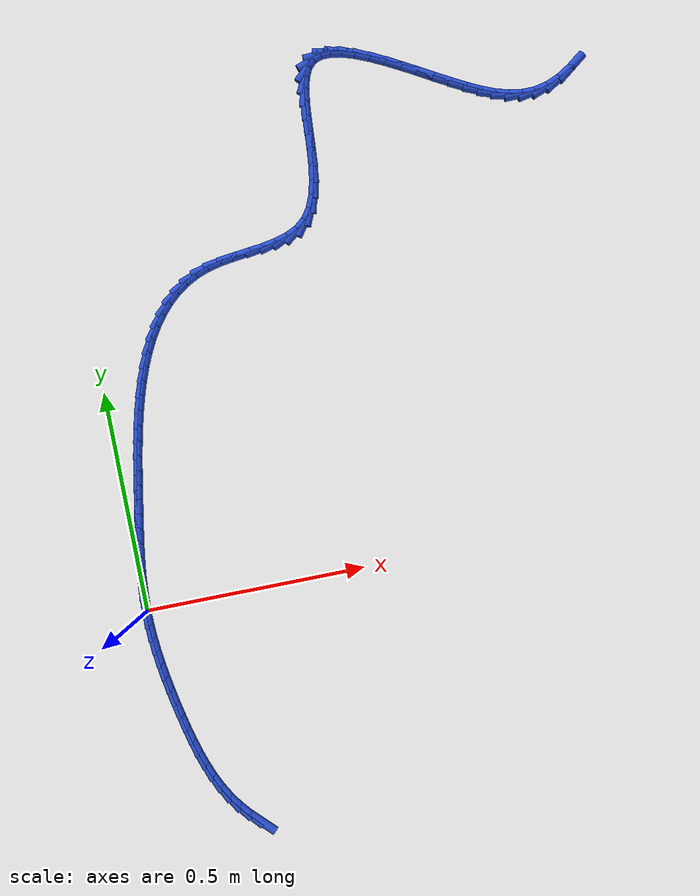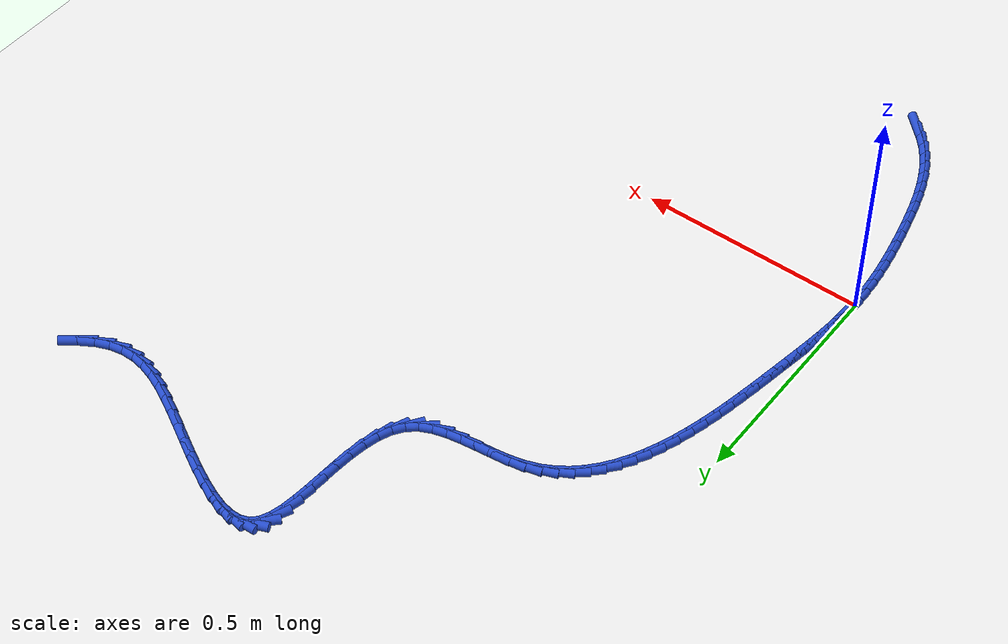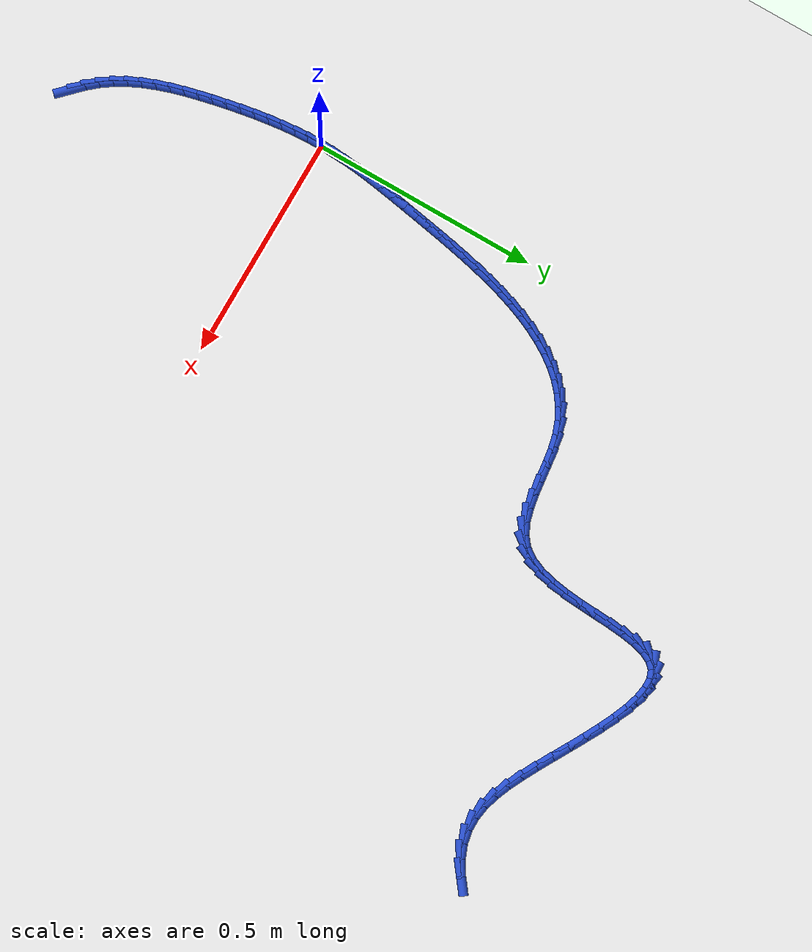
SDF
<sdf version="1.6">
 <world name="default">
  <model name="ground_plane">
   <static>1</static>
   <link name="link">
    <collision name="collision">
     <geometry><plane><normal>0 0 1</normal><size>100 100</size></plane></geometry>
     <surface><friction><ode><mu>100</mu><mu2>50</mu2></ode></friction></surface>
    </collision>
    <visual name="visual">
     <cast_shadows>0</cast_shadows>
     <geometry><plane><normal>0 0 1</normal><size>100 100</size></plane></geometry>
     <material>
      <script><uri>file://media/materials/scripts/gazebo.material</uri><name>Gazebo/WhiteGlow</name></script>
     </material>
    </visual>
   </link>
  </model>
  <model name="line">
   <link name="link_0">
    <pose>-2.3418766925686896e-17 2.7755575615628914e-17 0.01 0 1.57 1.5431840335242455</pose>
    <collision name="collision">
     <geometry><cylinder><radius>0.01</radius><length>0.08</length></cylinder></geometry>
    </collision>
    <visual name="visual">
     <material>
      <script><name>Gazebo/Blue</name><uri>file://media/materials/scripts/gazebo.material</uri></script>
     </material>
     <geometry><cylinder><radius>0.01</radius><length>0.08</length></cylinder></geometry>
    </visual>
   </link>
   <link name="link_1">
    <pose>0.0008205790836752634 0.029710336549701805 0.01 0 1.57 1.50552651921383</pose>
    <collision name="collision">
     <geometry><cylinder><radius>0.01</radius><length>0.08</length></cylinder></geometry>
    </collision>
    <visual name="visual">
     <material>
      <script><name>Gazebo/Blue</name><uri>file://media/materials/scripts/gazebo.material</uri></script>
     </material>
     <geometry><cylinder><radius>0.01</radius><length>0.08</length></cylinder></geometry>
    </visual>
   </link>
   <link name="link_2">
    <pose>0.0027581841918830462 0.05935425467118082 0.01 0 1.57 1.473147145253619</pose>
    <collision name="collision">
     <geometry><cylinder><radius>0.01</radius><length>0.08</length></cylinder></geometry>
    </collision>
    <visual name="visual">
     <material>
      <script><name>Gazebo/Blue</name><uri>file://media/materials/scripts/gazebo.material</uri></script>
     </material>
     <geometry><cylinder><radius>0.01</radius><length>0.08</length></cylinder></geometry>
    </visual>
   </link>
   <link name="link_3">
    <pose>0.005669025520075664 0.08906862011442201 0.01 0 1.57 1.4464387678759532</pose>
    <collision name="collision">
     <geometry><cylinder><radius>0.01</radius><length>0.08</length></cylinder></geometry>
    </collision>
    <visual name="visual">
     <material>
      <script><name>Gazebo/Blue</name><uri>file://media/materials/scripts/gazebo.material</uri></script>
     </material>
     <geometry><cylinder><radius>0.01</radius><length>0.08</length></cylinder></geometry>
    </visual>
   </link>
   <link name="link_4">
    <pose>0.00940931326370546 0.11899029862941032 0.01 0 1.57 1.4255900085189623</pose>
    <collision name="collision">
     <geometry><cylinder><radius>0.01</radius><length>0.08</length></cylinder></geometry>
    </collision>
    <visual name="visual">
     <material>
      <script><name>Gazebo/Blue</name><uri>file://media/materials/scripts/gazebo.material</uri></script>
     </material>
     <geometry><cylinder><radius>0.01</radius><length>0.08</length></cylinder></geometry>
    </visual>
   </link>
   <link name="link_5">
    <pose>0.013835257618224761 0.14925615596613062 0.01 0 1.57 1.4106095447927667</pose>
    <collision name="collision">
     <geometry><cylinder><radius>0.01</radius><length>0.08</length></cylinder></geometry>
    </collision>
    <visual name="visual">
     <material>
      <script><name>Gazebo/Blue</name><uri>file://media/materials/scripts/gazebo.material</uri></script>
     </material>
     <geometry><cylinder><radius>0.01</radius><length>0.08</length></cylinder></geometry>
    </visual>
   </link>
   <link name="link_6">
    <pose>0.018803068779085916 0.18000305787456794 0.01 0 1.57 1.4013568138451076</pose>
    <collision name="collision">
     <geometry><cylinder><radius>0.01</radius><length>0.08</length></cylinder></geometry>
    </collision>
    <visual name="visual">
     <material>
      <script><name>Gazebo/Blue</name><uri>file://media/materials/scripts/gazebo.material</uri></script>
     </material>
     <geometry><cylinder><radius>0.01</radius><length>0.08</length></cylinder></geometry>
    </visual>
   </link>
   <link name="link_7">
    <pose>0.02416895694174127 0.21136787010470726 0.01 0 1.57 1.397569741843321</pose>
    <collision name="collision">
     <geometry><cylinder><radius>0.01</radius><length>0.08</length></cylinder></geometry>
    </collision>
    <visual name="visual">
     <material>
      <script><name>Gazebo/Blue</name><uri>file://media/materials/scripts/gazebo.material</uri></script>
     </material>
     <geometry><cylinder><radius>0.01</radius><length>0.08</length></cylinder></geometry>
    </visual>
   </link>
   <link name="link_8">
    <pose>0.029789229954243227 0.24348732534745177 0.01 0 1.57 1.396500510977313</pose>
    <collision name="collision">
     <geometry><cylinder><radius>0.01</radius><length>0.08</length></cylinder></geometry>
    </collision>
    <visual name="visual">
     <material>
      <script><name>Gazebo/Blue</name><uri>file://media/materials/scripts/gazebo.material</uri></script>
     </material>
     <geometry><cylinder><radius>0.01</radius><length>0.08</length></cylinder></geometry>
    </visual>
   </link>
   <link name="link_9">
    <pose>0.03558605786783621 0.27640841404143074 0.01 0 1.57 1.3915085409926655</pose>
    <collision name="collision">
     <geometry><cylinder><radius>0.01</radius><length>0.08</length></cylinder></geometry>
    </collision>
    <visual name="visual">
     <material>
      <script><name>Gazebo/Blue</name><uri>file://media/materials/scripts/gazebo.material</uri></script>
     </material>
     <geometry><cylinder><radius>0.01</radius><length>0.08</length></cylinder></geometry>
    </visual>
   </link>
   <link name="link_10">
    <pose>0.04166178018431136 0.309932632069983 0.01 0 1.57 1.3816417532952412</pose>
    <collision name="collision">
     <geometry><cylinder><radius>0.01</radius><length>0.08</length></cylinder></geometry>
    </collision>
    <visual name="visual">
     <material>
      <script><name>Gazebo/Blue</name><uri>file://media/materials/scripts/gazebo.material</uri></script>
     </material>
     <geometry><cylinder><radius>0.01</radius><length>0.08</length></cylinder></geometry>
    </visual>
   </link>
   <link name="link_11">
    <pose>0.048149265617327096 0.3438198769474235 0.01 0 1.57 1.3669043718705038</pose>
    <collision name="collision">
     <geometry><cylinder><radius>0.01</radius><length>0.08</length></cylinder></geometry>
    </collision>
    <visual name="visual">
     <material>
      <script><name>Gazebo/Blue</name><uri>file://media/materials/scripts/gazebo.material</uri></script>
     </material>
     <geometry><cylinder><radius>0.01</radius><length>0.08</length></cylinder></geometry>
    </visual>
   </link>
   <link name="link_12">
    <pose>0.055181382880541786 0.37783004618806704 0.01 0 1.57 1.347132735977017</pose>
    <collision name="collision">
     <geometry><cylinder><radius>0.01</radius><length>0.08</length></cylinder></geometry>
    </collision>
    <visual name="visual">
     <material>
      <script><name>Gazebo/Blue</name><uri>file://media/materials/scripts/gazebo.material</uri></script>
     </material>
     <geometry><cylinder><radius>0.01</radius><length>0.08</length></cylinder></geometry>
    </visual>
   </link>
   <link name="link_13">
    <pose>0.06289100068761386 0.41172303730622845 0.01 0 1.57 1.3220028289862888</pose>
    <collision name="collision">
     <geometry><cylinder><radius>0.01</radius><length>0.08</length></cylinder></geometry>
    </collision>
    <visual name="visual">
     <material>
      <script><name>Gazebo/Blue</name><uri>file://media/materials/scripts/gazebo.material</uri></script>
     </material>
     <geometry><cylinder><radius>0.01</radius><length>0.08</length></cylinder></geometry>
    </visual>
   </link>
   <link name="link_14">
    <pose>0.07141098775220173 0.4452587478162229 0.01 0 1.57 1.2910300230309852</pose>
    <collision name="collision">
     <geometry><cylinder><radius>0.01</radius><length>0.08</length></cylinder></geometry>
    </collision>
    <visual name="visual">
     <material>
      <script><name>Gazebo/Blue</name><uri>file://media/materials/scripts/gazebo.material</uri></script>
     </material>
     <geometry><cylinder><radius>0.01</radius><length>0.08</length></cylinder></geometry>
    </visual>
   </link>
   <link name="link_15">
    <pose>0.08087421278796372 0.47819707523236465 0.01 0 1.57 1.253565006715181</pose>
    <collision name="collision">
     <geometry><cylinder><radius>0.01</radius><length>0.08</length></cylinder></geometry>
    </collision>
    <visual name="visual">
     <material>
      <script><name>Gazebo/Blue</name><uri>file://media/materials/scripts/gazebo.material</uri></script>
     </material>
     <geometry><cylinder><radius>0.01</radius><length>0.08</length></cylinder></geometry>
    </visual>
   </link>
   <link name="link_16">
    <pose>0.09141354450855828 0.5102979170689689 0.01 0 1.57 1.208791385753163</pose>
    <collision name="collision">
     <geometry><cylinder><radius>0.01</radius><length>0.08</length></cylinder></geometry>
    </collision>
    <visual name="visual">
     <material>
      <script><name>Gazebo/Blue</name><uri>file://media/materials/scripts/gazebo.material</uri></script>
     </material>
     <geometry><cylinder><radius>0.01</radius><length>0.08</length></cylinder></geometry>
    </visual>
   </link>
   <link name="link_17">
    <pose>0.10316185162764382 0.5413211708403504 0.01 0 1.57 1.1557338823651864</pose>
    <collision name="collision">
     <geometry><cylinder><radius>0.01</radius><length>0.08</length></cylinder></geometry>
    </collision>
    <visual name="visual">
     <material>
      <script><name>Gazebo/Blue</name><uri>file://media/materials/scripts/gazebo.material</uri></script>
     </material>
     <geometry><cylinder><radius>0.01</radius><length>0.08</length></cylinder></geometry>
    </visual>
   </link>
   <link name="link_18">
    <pose>0.1162520028588787 0.5710267340608242 0.01 0 1.57 1.0932919653676183</pose>
    <collision name="collision">
     <geometry><cylinder><radius>0.01</radius><length>0.08</length></cylinder></geometry>
    </collision>
    <visual name="visual">
     <material>
      <script><name>Gazebo/Blue</name><uri>file://media/materials/scripts/gazebo.material</uri></script>
     </material>
     <geometry><cylinder><radius>0.01</radius><length>0.08</length></cylinder></geometry>
    </visual>
   </link>
   <link name="link_19">
    <pose>0.13081686691592137 0.599174504244705 0.01 0 1.57 1.020322042075308</pose>
    <collision name="collision">
     <geometry><cylinder><radius>0.01</radius><length>0.08</length></cylinder></geometry>
    </collision>
    <visual name="visual">
     <material>
      <script><name>Gazebo/Blue</name><uri>file://media/materials/scripts/gazebo.material</uri></script>
     </material>
     <geometry><cylinder><radius>0.01</radius><length>0.08</length></cylinder></geometry>
    </visual>
   </link>
   <link name="link_20">
    <pose>0.14698931251243016 0.6255243789063073 0.01 0 1.57 0.9357994101545254</pose>
    <collision name="collision">
     <geometry><cylinder><radius>0.01</radius><length>0.08</length></cylinder></geometry>
    </collision>
    <visual name="visual">
     <material>
      <script><name>Gazebo/Blue</name><uri>file://media/materials/scripts/gazebo.material</uri></script>
     </material>
     <geometry><cylinder><radius>0.01</radius><length>0.08</length></cylinder></geometry>
    </visual>
   </link>
   <link name="link_21">
    <pose>0.16490220836206354 0.6498362555599466 0.01 0 1.57 0.8390902157389397</pose>
    <collision name="collision">
     <geometry><cylinder><radius>0.01</radius><length>0.08</length></cylinder></geometry>
    </collision>
    <visual name="visual">
     <material>
      <script><name>Gazebo/Blue</name><uri>file://media/materials/scripts/gazebo.material</uri></script>
     </material>
     <geometry><cylinder><radius>0.01</radius><length>0.08</length></cylinder></geometry>
    </visual>
   </link>
   <link name="link_22">
    <pose>0.1846884231784799 0.6718700317199374 0.01 0 1.57 0.7303354842152526</pose>
    <collision name="collision">
     <geometry><cylinder><radius>0.01</radius><length>0.08</length></cylinder></geometry>
    </collision>
    <visual name="visual">
     <material>
      <script><name>Gazebo/Blue</name><uri>file://media/materials/scripts/gazebo.material</uri></script>
     </material>
     <geometry><cylinder><radius>0.01</radius><length>0.08</length></cylinder></geometry>
    </visual>
   </link>
   <link name="link_23">
    <pose>0.20648082567533757 0.6913856049005946 0.01 0 1.57 0.610873083414487</pose>
    <collision name="collision">
     <geometry><cylinder><radius>0.01</radius><length>0.08</length></cylinder></geometry>
    </collision>
    <visual name="visual">
     <material>
      <script><name>Gazebo/Blue</name><uri>file://media/materials/scripts/gazebo.material</uri></script>
     </material>
     <geometry><cylinder><radius>0.01</radius><length>0.08</length></cylinder></geometry>
    </visual>
   </link>
   <link name="link_24">
    <pose>0.23041228456629503 0.7081428726162331 0.01 0 1.57 0.4835093218167435</pose>
    <collision name="collision">
     <geometry><cylinder><radius>0.01</radius><length>0.08</length></cylinder></geometry>
    </collision>
    <visual name="visual">
     <material>
      <script><name>Gazebo/Blue</name><uri>file://media/materials/scripts/gazebo.material</uri></script>
     </material>
     <geometry><cylinder><radius>0.01</radius><length>0.08</length></cylinder></geometry>
    </visual>
   </link>
   <link name="link_25">
    <pose>0.25661566856501056 0.7219017323811675 0.01 0 1.57 0.35238991997093994</pose>
    <collision name="collision">
     <geometry><cylinder><radius>0.01</radius><length>0.08</length></cylinder></geometry>
    </collision>
    <visual name="visual">
     <material>
      <script><name>Gazebo/Blue</name><uri>file://media/materials/scripts/gazebo.material</uri></script>
     </material>
     <geometry><cylinder><radius>0.01</radius><length>0.08</length></cylinder></geometry>
    </visual>
   </link>
   <link name="link_26">
    <pose>0.28522384638514275 0.7324220817097131 0.01 0 1.57 0.2298701826235086</pose>
    <collision name="collision">
     <geometry><cylinder><radius>0.01</radius><length>0.08</length></cylinder></geometry>
    </collision>
    <visual name="visual">
     <material>
      <script><name>Gazebo/Blue</name><uri>file://media/materials/scripts/gazebo.material</uri></script>
     </material>
     <geometry><cylinder><radius>0.01</radius><length>0.08</length></cylinder></geometry>
    </visual>
   </link>
   <link name="link_27">
    <pose>0.3162094445750726 0.7396729109899698 0.01 0 1.57 0.1501688839219765</pose>
    <collision name="collision">
     <geometry><cylinder><radius>0.01</radius><length>0.08</length></cylinder></geometry>
    </collision>
    <visual name="visual">
     <material>
      <script><name>Gazebo/Blue</name><uri>file://media/materials/scripts/gazebo.material</uri></script>
     </material>
     <geometry><cylinder><radius>0.01</radius><length>0.08</length></cylinder></geometry>
    </visual>
   </link>
   <link name="link_28">
    <pose>0.3487940414781982 0.7446032200055676 0.01 0 1.57 0.11536979349667276</pose>
    <collision name="collision">
     <geometry><cylinder><radius>0.01</radius><length>0.08</length></cylinder></geometry>
    </collision>
    <visual name="visual">
     <material>
      <script><name>Gazebo/Blue</name><uri>file://media/materials/scripts/gazebo.material</uri></script>
     </material>
     <geometry><cylinder><radius>0.01</radius><length>0.08</length></cylinder></geometry>
    </visual>
   </link>
   <link name="link_29">
    <pose>0.3819793652471812 0.7484488812749355 0.01 0 1.57 0.12130439466043336</pose>
    <collision name="collision">
     <geometry><cylinder><radius>0.01</radius><length>0.08</length></cylinder></geometry>
    </collision>
    <visual name="visual">
     <material>
      <script><name>Gazebo/Blue</name><uri>file://media/materials/scripts/gazebo.material</uri></script>
     </material>
     <geometry><cylinder><radius>0.01</radius><length>0.08</length></cylinder></geometry>
    </visual>
   </link>
   <link name="link_30">
    <pose>0.4147671163705326 0.752445803414223 0.01 0 1.57 0.16985955729170202</pose>
    <collision name="collision">
     <geometry><cylinder><radius>0.01</radius><length>0.08</length></cylinder></geometry>
    </collision>
    <visual name="visual">
     <material>
      <script><name>Gazebo/Blue</name><uri>file://media/materials/scripts/gazebo.material</uri></script>
     </material>
     <geometry><cylinder><radius>0.01</radius><length>0.08</length></cylinder></geometry>
    </visual>
   </link>
   <link name="link_31">
    <pose>0.44615899533676384 0.7578298950395792 0.01 0 1.57 0.26941751046165724</pose>
    <collision name="collision">
     <geometry><cylinder><radius>0.01</radius><length>0.08</length></cylinder></geometry>
    </collision>
    <visual name="visual">
     <material>
      <script><name>Gazebo/Blue</name><uri>file://media/materials/scripts/gazebo.material</uri></script>
     </material>
     <geometry><cylinder><radius>0.01</radius><length>0.08</length></cylinder></geometry>
    </visual>
   </link>
   <link name="link_32">
    <pose>0.4751567026343858 0.7658370647671527 0.01 0 1.57 0.4339635068815142</pose>
    <collision name="collision">
     <geometry><cylinder><radius>0.01</radius><length>0.08</length></cylinder></geometry>
    </collision>
    <visual name="visual">
     <material>
      <script><name>Gazebo/Blue</name><uri>file://media/materials/scripts/gazebo.material</uri></script>
     </material>
     <geometry><cylinder><radius>0.01</radius><length>0.08</length></cylinder></geometry>
    </visual>
   </link>
   <link name="link_33">
    <pose>0.5007619387519098 0.777703221213093 0.01 0 1.57 0.674437882276421</pose>
    <collision name="collision">
     <geometry><cylinder><radius>0.01</radius><length>0.08</length></cylinder></geometry>
    </collision>
    <visual name="visual">
     <material>
      <script><name>Gazebo/Blue</name><uri>file://media/materials/scripts/gazebo.material</uri></script>
     </material>
     <geometry><cylinder><radius>0.01</radius><length>0.08</length></cylinder></geometry>
    </visual>
   </link>
   <link name="link_34">
    <pose>0.5219764141205137 0.7946642600806357 0.01 0 1.57 0.9550952539210807</pose>
    <collision name="collision">
     <geometry><cylinder><radius>0.01</radius><length>0.08</length></cylinder></geometry>
    </collision>
    <visual name="visual">
     <material>
      <script><name>Gazebo/Blue</name><uri>file://media/materials/scripts/gazebo.material</uri></script>
     </material>
     <geometry><cylinder><radius>0.01</radius><length>0.08</length></cylinder></geometry>
    </visual>
   </link>
   <link name="link_35">
    <pose>0.5381416971866676 0.817514690746872 0.01 0 1.57 1.1742861780606355</pose>
    <collision name="collision">
     <geometry><cylinder><radius>0.01</radius><length>0.08</length></cylinder></geometry>
    </collision>
    <visual name="visual">
     <material>
      <script><name>Gazebo/Blue</name><uri>file://media/materials/scripts/gazebo.material</uri></script>
     </material>
     <geometry><cylinder><radius>0.01</radius><length>0.08</length></cylinder></geometry>
    </visual>
   </link>
   <link name="link_36">
    <pose>0.5498352587173954 0.8454439099824648 0.01 0 1.57 1.3222137875140283</pose>
    <collision name="collision">
     <geometry><cylinder><radius>0.01</radius><length>0.08</length></cylinder></geometry>
    </collision>
    <visual name="visual">
     <material>
      <script><name>Gazebo/Blue</name><uri>file://media/materials/scripts/gazebo.material</uri></script>
     </material>
     <geometry><cylinder><radius>0.01</radius><length>0.08</length></cylinder></geometry>
    </visual>
   </link>
   <link name="link_37">
    <pose>0.5579154226606409 0.8772765600190204 0.01 0 1.57 1.417919299343995</pose>
    <collision name="collision">
     <geometry><cylinder><radius>0.01</radius><length>0.08</length></cylinder></geometry>
    </collision>
    <visual name="visual">
     <material>
      <script><name>Gazebo/Blue</name><uri>file://media/materials/scripts/gazebo.material</uri></script>
     </material>
     <geometry><cylinder><radius>0.01</radius><length>0.08</length></cylinder></geometry>
    </visual>
   </link>
   <link name="link_38">
    <pose>0.563240512964348 0.911837283088146 0.01 0 1.57 1.4761474328278965</pose>
    <collision name="collision">
     <geometry><cylinder><radius>0.01</radius><length>0.08</length></cylinder></geometry>
    </collision>
    <visual name="visual">
     <material>
      <script><name>Gazebo/Blue</name><uri>file://media/materials/scripts/gazebo.material</uri></script>
     </material>
     <geometry><cylinder><radius>0.01</radius><length>0.08</length></cylinder></geometry>
    </visual>
   </link>
   <link name="link_39">
    <pose>0.5666688535764606 0.947950721421449 0.01 0 1.57 1.5053960945276603</pose>
    <collision name="collision">
     <geometry><cylinder><radius>0.01</radius><length>0.08</length></cylinder></geometry>
    </collision>
    <visual name="visual">
     <material>
      <script><name>Gazebo/Blue</name><uri>file://media/materials/scripts/gazebo.material</uri></script>
     </material>
     <geometry><cylinder><radius>0.01</radius><length>0.08</length></cylinder></geometry>
    </visual>
   </link>
   <link name="link_40">
    <pose>0.5690587684449228 0.9844415172505356 0.01 0 1.57 1.5089632303011677</pose>
    <collision name="collision">
     <geometry><cylinder><radius>0.01</radius><length>0.08</length></cylinder></geometry>
    </collision>
    <visual name="visual">
     <material>
      <script><name>Gazebo/Blue</name><uri>file://media/materials/scripts/gazebo.material</uri></script>
     </material>
     <geometry><cylinder><radius>0.01</radius><length>0.08</length></cylinder></geometry>
    </visual>
   </link>
   <link name="link_41">
    <pose>0.5712685815176783 1.0201343128070128 0.01 0 1.57 1.4853558689104662</pose>
    <collision name="collision">
     <geometry><cylinder><radius>0.01</radius><length>0.08</length></cylinder></geometry>
    </collision>
    <visual name="visual">
     <material>
      <script><name>Gazebo/Blue</name><uri>file://media/materials/scripts/gazebo.material</uri></script>
     </material>
     <geometry><cylinder><radius>0.01</radius><length>0.08</length></cylinder></geometry>
    </visual>
   </link>
   <link name="link_42">
    <pose>0.5741566167426714 1.053853750322488 0.01 0 1.57 1.4270617674186972</pose>
    <collision name="collision">
     <geometry><cylinder><radius>0.01</radius><length>0.08</length></cylinder></geometry>
    </collision>
    <visual name="visual">
     <material>
      <script><name>Gazebo/Blue</name><uri>file://media/materials/scripts/gazebo.material</uri></script>
     </material>
     <geometry><cylinder><radius>0.01</radius><length>0.08</length></cylinder></geometry>
    </visual>
   </link>
   <link name="link_43">
    <pose>0.578581198067846 1.0844244720285683 0.01 0 1.57 1.3165951914812444</pose>
    <collision name="collision">
     <geometry><cylinder><radius>0.01</radius><length>0.08</length></cylinder></geometry>
    </collision>
    <visual name="visual">
     <material>
      <script><name>Gazebo/Blue</name><uri>file://media/materials/scripts/gazebo.material</uri></script>
     </material>
     <geometry><cylinder><radius>0.01</radius><length>0.08</length></cylinder></geometry>
    </visual>
   </link>
   <link name="link_44">
    <pose>0.5854006494411456 1.110671120156859 0.01 0 1.57 1.1188208683266396</pose>
    <collision name="collision">
     <geometry><cylinder><radius>0.01</radius><length>0.08</length></cylinder></geometry>
    </collision>
    <visual name="visual">
     <material>
      <script><name>Gazebo/Blue</name><uri>file://media/materials/scripts/gazebo.material</uri></script>
     </material>
     <geometry><cylinder><radius>0.01</radius><length>0.08</length></cylinder></geometry>
    </visual>
   </link>
   <link name="link_45">
    <pose>0.5954732948105146 1.1314183369389692 0.01 0 1.57 0.7827034766472749</pose>
    <collision name="collision">
     <geometry><cylinder><radius>0.01</radius><length>0.08</length></cylinder></geometry>
    </collision>
    <visual name="visual">
     <material>
      <script><name>Gazebo/Blue</name><uri>file://media/materials/scripts/gazebo.material</uri></script>
     </material>
     <geometry><cylinder><radius>0.01</radius><length>0.08</length></cylinder></geometry>
    </visual>
   </link>
   <link name="link_46">
    <pose>0.6096428105415517 1.1455116928997957 0.01 0 1.57 0.36665389753765604</pose>
    <collision name="collision">
     <geometry><cylinder><radius>0.01</radius><length>0.08</length></cylinder></geometry>
    </collision>
    <visual name="visual">
     <material>
      <script><name>Gazebo/Blue</name><uri>file://media/materials/scripts/gazebo.material</uri></script>
     </material>
     <geometry><cylinder><radius>0.01</radius><length>0.08</length></cylinder></geometry>
    </visual>
   </link>
   <link name="link_47">
    <pose>0.6281716997895691 1.1526271320082226 0.01 0 1.57 0.040264353662635054</pose>
    <collision name="collision">
     <geometry><cylinder><radius>0.01</radius><length>0.08</length></cylinder></geometry>
    </collision>
    <visual name="visual">
     <material>
      <script><name>Gazebo/Blue</name><uri>file://media/materials/scripts/gazebo.material</uri></script>
     </material>
     <geometry><cylinder><radius>0.01</radius><length>0.08</length></cylinder></geometry>
    </visual>
   </link>
   <link name="link_48">
    <pose>0.6505606332940201 1.1535290954241595 0.01 0 1.57 -0.17234588412058333</pose>
    <collision name="collision">
     <geometry><cylinder><radius>0.01</radius><length>0.08</length></cylinder></geometry>
    </collision>
    <visual name="visual">
     <material>
      <script><name>Gazebo/Blue</name><uri>file://media/materials/scripts/gazebo.material</uri></script>
     </material>
     <geometry><cylinder><radius>0.01</radius><length>0.08</length></cylinder></geometry>
    </visual>
   </link>
   <link name="link_49">
    <pose>0.6762586704834133 1.1490557659412661 0.01 0 1.57 -0.30665426514661104</pose>
    <collision name="collision">
     <geometry><cylinder><radius>0.01</radius><length>0.08</length></cylinder></geometry>
    </collision>
    <visual name="visual">
     <material>
      <script><name>Gazebo/Blue</name><uri>file://media/materials/scripts/gazebo.material</uri></script>
     </material>
     <geometry><cylinder><radius>0.01</radius><length>0.08</length></cylinder></geometry>
    </visual>
   </link>
   <link name="link_50">
    <pose>0.7047148707862567 1.140045326353201 0.01 0 1.57 -0.39292623963590634</pose>
    <collision name="collision">
     <geometry><cylinder><radius>0.01</radius><length>0.08</length></cylinder></geometry>
    </collision>
    <visual name="visual">
     <material>
      <script><name>Gazebo/Blue</name><uri>file://media/materials/scripts/gazebo.material</uri></script>
     </material>
     <geometry><cylinder><radius>0.01</radius><length>0.08</length></cylinder></geometry>
    </visual>
   </link>
   <link name="link_51">
    <pose>0.7353782936310586 1.1273359594536236 0.01 0 1.57 -0.44894365665205005</pose>
    <collision name="collision">
     <geometry><cylinder><radius>0.01</radius><length>0.08</length></cylinder></geometry>
    </collision>
    <visual name="visual">
     <material>
      <script><name>Gazebo/Blue</name><uri>file://media/materials/scripts/gazebo.material</uri></script>
     </material>
     <geometry><cylinder><radius>0.01</radius><length>0.08</length></cylinder></geometry>
    </visual>
   </link>
   <link name="link_52">
    <pose>0.7676979984463269 1.111765848036194 0.01 0 1.57 -0.48449066333439234</pose>
    <collision name="collision">
     <geometry><cylinder><radius>0.01</radius><length>0.08</length></cylinder></geometry>
    </collision>
    <visual name="visual">
     <material>
      <script><name>Gazebo/Blue</name><uri>file://media/materials/scripts/gazebo.material</uri></script>
     </material>
     <geometry><cylinder><radius>0.01</radius><length>0.08</length></cylinder></geometry>
    </visual>
   </link>
   <link name="link_53">
    <pose>0.8011230446605704 1.0941731748945713 0.01 0 1.57 -0.5048373976185873</pose>
    <collision name="collision">
     <geometry><cylinder><radius>0.01</radius><length>0.08</length></cylinder></geometry>
    </collision>
    <visual name="visual">
     <material>
      <script><name>Gazebo/Blue</name><uri>file://media/materials/scripts/gazebo.material</uri></script>
     </material>
     <geometry><cylinder><radius>0.01</radius><length>0.08</length></cylinder></geometry>
    </visual>
   </link>
   <link name="link_54">
    <pose>0.8351024917022972 1.075396122822415 0.01 0 1.57 -0.5125652068610111</pose>
    <collision name="collision">
     <geometry><cylinder><radius>0.01</radius><length>0.08</length></cylinder></geometry>
    </collision>
    <visual name="visual">
     <material>
      <script><name>Gazebo/Blue</name><uri>file://media/materials/scripts/gazebo.material</uri></script>
     </material>
     <geometry><cylinder><radius>0.01</radius><length>0.08</length></cylinder></geometry>
    </visual>
   </link>
   <link name="link_55">
    <pose>0.8690853990000155 1.0562728746133838 0.01 0 1.57 -0.5083780034503285</pose>
    <collision name="collision">
     <geometry><cylinder><radius>0.01</radius><length>0.08</length></cylinder></geometry>
    </collision>
    <visual name="visual">
     <material>
      <script><name>Gazebo/Blue</name><uri>file://media/materials/scripts/gazebo.material</uri></script>
     </material>
     <geometry><cylinder><radius>0.01</radius><length>0.08</length></cylinder></geometry>
    </visual>
   </link>
   <link name="link_56">
    <pose>0.902520825982233 1.0376416130611377 0.01 0 1.57 -0.4909156597733868</pose>
    <collision name="collision">
     <geometry><cylinder><radius>0.01</radius><length>0.08</length></cylinder></geometry>
    </collision>
    <visual name="visual">
     <material>
      <script><name>Gazebo/Blue</name><uri>file://media/materials/scripts/gazebo.material</uri></script>
     </material>
     <geometry><cylinder><radius>0.01</radius><length>0.08</length></cylinder></geometry>
    </visual>
   </link>
   <link name="link_57">
    <pose>0.9348978218388884 1.020334007853938 0.01 0 1.57 -0.45312876559290505</pose>
    <collision name="collision">
     <geometry><cylinder><radius>0.01</radius><length>0.08</length></cylinder></geometry>
    </collision>
    <visual name="visual">
     <material>
      <script><name>Gazebo/Blue</name><uri>file://media/materials/scripts/gazebo.material</uri></script>
     </material>
     <geometry><cylinder><radius>0.01</radius><length>0.08</length></cylinder></geometry>
    </visual>
   </link>
   <link name="link_58">
    <pose>0.9661727804954329 1.0051056125590505 0.01 0 1.57 -0.388135024559466</pose>
    <collision name="collision">
     <geometry><cylinder><radius>0.01</radius><length>0.08</length></cylinder></geometry>
    </collision>
    <visual name="visual">
     <material>
      <script><name>Gazebo/Blue</name><uri>file://media/materials/scripts/gazebo.material</uri></script>
     </material>
     <geometry><cylinder><radius>0.01</radius><length>0.08</length></cylinder></geometry>
    </visual>
   </link>
   <link name="link_59">
    <pose>0.9966047826361238 0.9926626823560493 0.01 0 1.57 -0.2913361071750208</pose>
    <collision name="collision">
     <geometry><cylinder><radius>0.01</radius><length>0.08</length></cylinder></geometry>
    </collision>
    <visual name="visual">
     <material>
      <script><name>Gazebo/Blue</name><uri>file://media/materials/scripts/gazebo.material</uri></script>
     </material>
     <geometry><cylinder><radius>0.01</radius><length>0.08</length></cylinder></geometry>
    </visual>
   </link>
   <link name="link_60">
    <pose>1.0264580067338676 0.983710642151119 0.01 0 1.57 -0.15963037158794874</pose>
    <collision name="collision">
     <geometry><cylinder><radius>0.01</radius><length>0.08</length></cylinder></geometry>
    </collision>
    <visual name="visual">
     <material>
      <script><name>Gazebo/Blue</name><uri>file://media/materials/scripts/gazebo.material</uri></script>
     </material>
     <geometry><cylinder><radius>0.01</radius><length>0.08</length></cylinder></geometry>
    </visual>
   </link>
   <link name="link_61">
    <pose>1.0559966312615698 0.9789549168504443 0.01 0 1.57 0.004951584004449901</pose>
    <collision name="collision">
     <geometry><cylinder><radius>0.01</radius><length>0.08</length></cylinder></geometry>
    </collision>
    <visual name="visual">
     <material>
      <script><name>Gazebo/Blue</name><uri>file://media/materials/scripts/gazebo.material</uri></script>
     </material>
     <geometry><cylinder><radius>0.01</radius><length>0.08</length></cylinder></geometry>
    </visual>
   </link>
   <link name="link_62">
    <pose>1.0854848346921369 0.9791009313602099 0.01 0 1.57 0.19132765447091377</pose>
    <collision name="collision">
     <geometry><cylinder><radius>0.01</radius><length>0.08</length></cylinder></geometry>
    </collision>
    <visual name="visual">
     <material>
      <script><name>Gazebo/Blue</name><uri>file://media/materials/scripts/gazebo.material</uri></script>
     </material>
     <geometry><cylinder><radius>0.01</radius><length>0.08</length></cylinder></geometry>
    </visual>
   </link>
   <link name="link_63">
    <pose>1.1151867954984744 0.9848541105866003 0.01 0 1.57 0.3803181798895723</pose>
    <collision name="collision">
     <geometry><cylinder><radius>0.01</radius><length>0.08</length></cylinder></geometry>
    </collision>
    <visual name="visual">
     <material>
      <script><name>Gazebo/Blue</name><uri>file://media/materials/scripts/gazebo.material</uri></script>
     </material>
     <geometry><cylinder><radius>0.01</radius><length>0.08</length></cylinder></geometry>
    </visual>
   </link>
   <link name="link_64">
    <pose>1.1453665325737021 0.9969194174110169 0.01 0 1.57 0.5428441008434026</pose>
    <collision name="collision">
     <geometry><cylinder><radius>0.01</radius><length>0.08</length></cylinder></geometry>
    </collision>
    <visual name="visual">
     <material>
      <script><name>Gazebo/Blue</name><uri>file://media/materials/scripts/gazebo.material</uri></script>
     </material>
     <geometry><cylinder><radius>0.01</radius><length>0.08</length></cylinder></geometry>
    </visual>
   </link>
   <link name="link_65">
    <pose>1.1761016010668832 1.0154619539172671 0.01 0 1.57 0.6535325606691467</pose>
    <collision name="collision">
     <geometry><cylinder><radius>0.01</radius><length>0.08</length></cylinder></geometry>
    </collision>
    <visual name="visual">
     <material>
      <script><name>Gazebo/Blue</name><uri>file://media/materials/scripts/gazebo.material</uri></script>
     </material>
     <geometry><cylinder><radius>0.01</radius><length>0.08</length></cylinder></geometry>
    </visual>
   </link>
   <link name="link_242">
    <pose>0.16004552578746328 -0.5147032333664531 0.01 0 1.57 -0.7784040823109475</pose>
    <collision name="collision">
     <geometry><cylinder><radius>0.01</radius><length>0.08</length></cylinder></geometry>
    </collision>
    <visual name="visual">
     <material>
      <script><name>Gazebo/Blue</name><uri>file://media/materials/scripts/gazebo.material</uri></script>
     </material>
     <geometry><cylinder><radius>0.01</radius><length>0.08</length></cylinder></geometry>
    </visual>
   </link>
   <link name="link_243">
    <pose>0.13858883173924028 -0.49354459923911626 0.01 0 1.57 -0.8634279824808013</pose>
    <collision name="collision">
     <geometry><cylinder><radius>0.01</radius><length>0.08</length></cylinder></geometry>
    </collision>
    <visual name="visual">
     <material>
      <script><name>Gazebo/Blue</name><uri>file://media/materials/scripts/gazebo.material</uri></script>
     </material>
     <geometry><cylinder><radius>0.01</radius><length>0.08</length></cylinder></geometry>
    </visual>
   </link>
   <link name="link_244">
    <pose>0.11916950914630767 -0.4708309606068035 0.01 0 1.57 -0.9588944027640516</pose>
    <collision name="collision">
     <geometry><cylinder><radius>0.01</radius><length>0.08</length></cylinder></geometry>
    </collision>
    <visual name="visual">
     <material>
      <script><name>Gazebo/Blue</name><uri>file://media/materials/scripts/gazebo.material</uri></script>
     </material>
     <geometry><cylinder><radius>0.01</radius><length>0.08</length></cylinder></geometry>
    </visual>
   </link>
   <link name="link_245">
    <pose>0.10202601153688258 -0.4464014499950614 0.01 0 1.57 -1.0498816433709441</pose>
    <collision name="collision">
     <geometry><cylinder><radius>0.01</radius><length>0.08</length></cylinder></geometry>
    </collision>
    <visual name="visual">
     <material>
      <script><name>Gazebo/Blue</name><uri>file://media/materials/scripts/gazebo.material</uri></script>
     </material>
     <geometry><cylinder><radius>0.01</radius><length>0.08</length></cylinder></geometry>
    </visual>
   </link>
   <link name="link_246">
    <pose>0.08708085040899081 -0.4203544650001291 0.01 0 1.57 -1.128514621979226</pose>
    <collision name="collision">
     <geometry><cylinder><radius>0.01</radius><length>0.08</length></cylinder></geometry>
    </collision>
    <visual name="visual">
     <material>
      <script><name>Gazebo/Blue</name><uri>file://media/materials/scripts/gazebo.material</uri></script>
     </material>
     <geometry><cylinder><radius>0.01</radius><length>0.08</length></cylinder></geometry>
    </visual>
   </link>
   <link name="link_247">
    <pose>0.07409078052610824 -0.39292442478990375 0.01 0 1.57 -1.194862427730367</pose>
    <collision name="collision">
     <geometry><cylinder><radius>0.01</radius><length>0.08</length></cylinder></geometry>
    </collision>
    <visual name="visual">
     <material>
      <script><name>Gazebo/Blue</name><uri>file://media/materials/scripts/gazebo.material</uri></script>
     </material>
     <geometry><cylinder><radius>0.01</radius><length>0.08</length></cylinder></geometry>
    </visual>
   </link>
   <link name="link_248">
    <pose>0.06281109212502492 -0.3643469503369766 0.01 0 1.57 -1.2495264069973229</pose>
    <collision name="collision">
     <geometry><cylinder><radius>0.01</radius><length>0.08</length></cylinder></geometry>
    </collision>
    <visual name="visual">
     <material>
      <script><name>Gazebo/Blue</name><uri>file://media/materials/scripts/gazebo.material</uri></script>
     </material>
     <geometry><cylinder><radius>0.01</radius><length>0.08</length></cylinder></geometry>
    </visual>
   </link>
   <link name="link_249">
    <pose>0.052997075442530905 -0.33485766261393896 0.01 0 1.57 -1.2932830976718221</pose>
    <collision name="collision">
     <geometry><cylinder><radius>0.01</radius><length>0.08</length></cylinder></geometry>
    </collision>
    <visual name="visual">
     <material>
      <script><name>Gazebo/Blue</name><uri>file://media/materials/scripts/gazebo.material</uri></script>
     </material>
     <geometry><cylinder><radius>0.01</radius><length>0.08</length></cylinder></geometry>
    </visual>
   </link>
   <link name="link_250">
    <pose>0.04440402071541635 -0.30469218259338254 0.01 0 1.57 -1.3268853357444943</pose>
    <collision name="collision">
     <geometry><cylinder><radius>0.01</radius><length>0.08</length></cylinder></geometry>
    </collision>
    <visual name="visual">
     <material>
      <script><name>Gazebo/Blue</name><uri>file://media/materials/scripts/gazebo.material</uri></script>
     </material>
     <geometry><cylinder><radius>0.01</radius><length>0.08</length></cylinder></geometry>
    </visual>
   </link>
   <link name="link_251">
    <pose>0.0367872181804713 -0.27408613124789843 0.01 0 1.57 -1.3509409379783557</pose>
    <collision name="collision">
     <geometry><cylinder><radius>0.01</radius><length>0.08</length></cylinder></geometry>
    </collision>
    <visual name="visual">
     <material>
      <script><name>Gazebo/Blue</name><uri>file://media/materials/scripts/gazebo.material</uri></script>
     </material>
     <geometry><cylinder><radius>0.01</radius><length>0.08</length></cylinder></geometry>
    </visual>
   </link>
   <link name="link_252">
    <pose>0.029901958074485695 -0.24327512955007735 0.01 0 1.57 -1.3671886180397546</pose>
    <collision name="collision">
     <geometry><cylinder><radius>0.01</radius><length>0.08</length></cylinder></geometry>
    </collision>
    <visual name="visual">
     <material>
      <script><name>Gazebo/Blue</name><uri>file://media/materials/scripts/gazebo.material</uri></script>
     </material>
     <geometry><cylinder><radius>0.01</radius><length>0.08</length></cylinder></geometry>
    </visual>
   </link>
   <link name="link_253">
    <pose>0.023541825137454633 -0.21247079338995864 0.01 0 1.57 -1.3837519689643525</pose>
    <collision name="collision">
     <geometry><cylinder><radius>0.01</radius><length>0.08</length></cylinder></geometry>
    </collision>
    <visual name="visual">
     <material>
      <script><name>Gazebo/Blue</name><uri>file://media/materials/scripts/gazebo.material</uri></script>
     </material>
     <geometry><cylinder><radius>0.01</radius><length>0.08</length></cylinder></geometry>
    </visual>
   </link>
   <link name="link_254">
    <pose>0.01772640075911728 -0.18174307163542114 0.01 0 1.57 -1.4036463798744987</pose>
    <collision name="collision">
     <geometry><cylinder><radius>0.01</radius><length>0.08</length></cylinder></geometry>
    </collision>
    <visual name="visual">
     <material>
      <script><name>Gazebo/Blue</name><uri>file://media/materials/scripts/gazebo.material</uri></script>
     </material>
     <geometry><cylinder><radius>0.01</radius><length>0.08</length></cylinder></geometry>
    </visual>
   </link>
   <link name="link_255">
    <pose>0.012557880985699002 -0.1511101257832304 0.01 0 1.57 -1.4269961680779006</pose>
    <collision name="collision">
     <geometry><cylinder><radius>0.01</radius><length>0.08</length></cylinder></geometry>
    </collision>
    <visual name="visual">
     <material>
      <script><name>Gazebo/Blue</name><uri>file://media/materials/scripts/gazebo.material</uri></script>
     </material>
     <geometry><cylinder><radius>0.01</radius><length>0.08</length></cylinder></geometry>
    </visual>
   </link>
   <link name="link_256">
    <pose>0.00813858435455998 -0.12059004054602995 0.01 0 1.57 -1.4539290054771241</pose>
    <collision name="collision">
     <geometry><cylinder><radius>0.01</radius><length>0.08</length></cylinder></geometry>
    </collision>
    <visual name="visual">
     <material>
      <script><name>Gazebo/Blue</name><uri>file://media/materials/scripts/gazebo.material</uri></script>
     </material>
     <geometry><cylinder><radius>0.01</radius><length>0.08</length></cylinder></geometry>
    </visual>
   </link>
   <link name="link_257">
    <pose>0.004570829403060389 -0.09020090063646317 0.01 0 1.57 -1.4845726376378152</pose>
    <collision name="collision">
     <geometry><cylinder><radius>0.01</radius><length>0.08</length></cylinder></geometry>
    </collision>
    <visual name="visual">
     <material>
      <script><name>Gazebo/Blue</name><uri>file://media/materials/scripts/gazebo.material</uri></script>
     </material>
     <geometry><cylinder><radius>0.01</radius><length>0.08</length></cylinder></geometry>
    </visual>
   </link>
   <link name="link_258">
    <pose>0.0019569346685604063 -0.05996079076717363 0.01 0 1.57 -1.519044744116886</pose>
    <collision name="collision">
     <geometry><cylinder><radius>0.01</radius><length>0.08</length></cylinder></geometry>
    </collision>
    <visual name="visual">
     <material>
      <script><name>Gazebo/Blue</name><uri>file://media/materials/scripts/gazebo.material</uri></script>
     </material>
     <geometry><cylinder><radius>0.01</radius><length>0.08</length></cylinder></geometry>
    </visual>
   </link>
   <link name="link_259">
    <pose>0.0003992186884202134 -0.029887795650804797 0.01 0 1.57 -1.5574398734357047</pose>
    <collision name="collision">
     <geometry><cylinder><radius>0.01</radius><length>0.08</length></cylinder></geometry>
    </collision>
    <visual name="visual">
     <material>
      <script><name>Gazebo/Blue</name><uri>file://media/materials/scripts/gazebo.material</uri></script>
     </material>
     <geometry><cylinder><radius>0.01</radius><length>0.08</length></cylinder></geometry>
    </visual>
   </link>
   <link name="link_260">
    <pose>-1.3877787807814457e-17 -1.6653345369377348e-16 0.01 0 1.57 1.541779332181047</pose>
    <collision name="collision">
     <geometry><cylinder><radius>0.01</radius><length>0.08</length></cylinder></geometry>
    </collision>
    <visual name="visual">
     <material>
      <script><name>Gazebo/Blue</name><uri>file://media/materials/scripts/gazebo.material</uri></script>
     </material>
     <geometry><cylinder><radius>0.01</radius><length>0.08</length></cylinder></geometry>
    </visual>
   </link>
   <link name="link_261">
    <pose>0.0008615971406598999 0.029684511472596733 0.01 0 1.57 1.4954303767053863</pose>
    <collision name="collision">
     <geometry><cylinder><radius>0.01</radius><length>0.08</length></cylinder></geometry>
    </collision>
    <visual name="visual">
     <material>
      <script><name>Gazebo/Blue</name><uri>file://media/materials/scripts/gazebo.material</uri></script>
     </material>
     <geometry><cylinder><radius>0.01</radius><length>0.08</length></cylinder></geometry>
    </visual>
   </link>
   <link name="link_262">
    <pose>0.0030863286477601374 0.05914765405434244 0.01 0 1.57 1.5186635388771024</pose>
    <collision name="collision">
     <geometry><cylinder><radius>0.01</radius><length>0.08</length></cylinder></geometry>
    </collision>
    <visual name="visual">
     <material>
      <script><name>Gazebo/Blue</name><uri>file://media/materials/scripts/gazebo.material</uri></script>
     </material>
     <geometry><cylinder><radius>0.01</radius><length>0.08</length></cylinder></geometry>
    </visual>
   </link>
  </model>
 </world>
</sdf>
